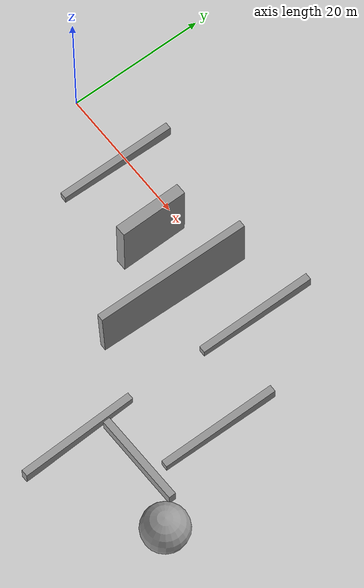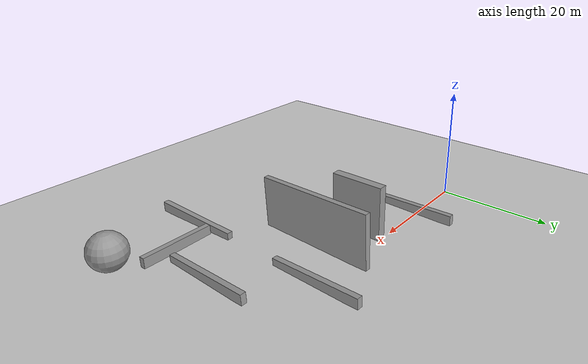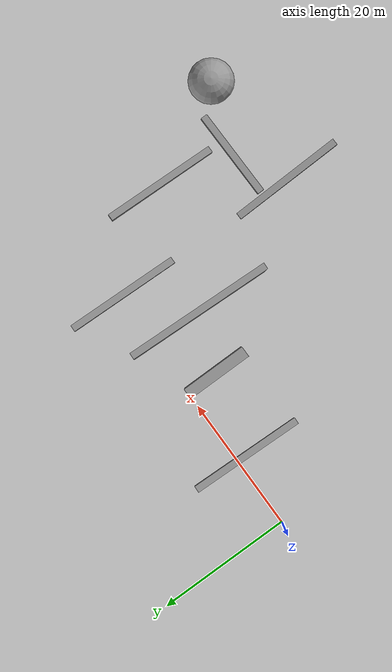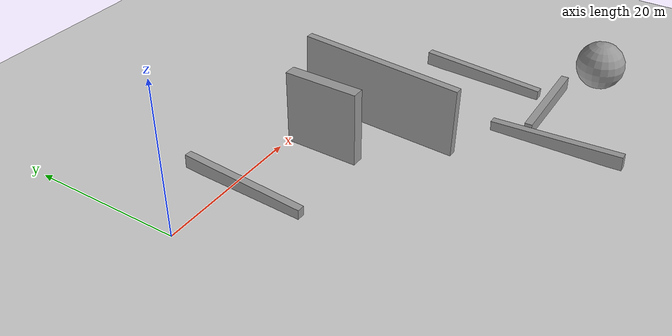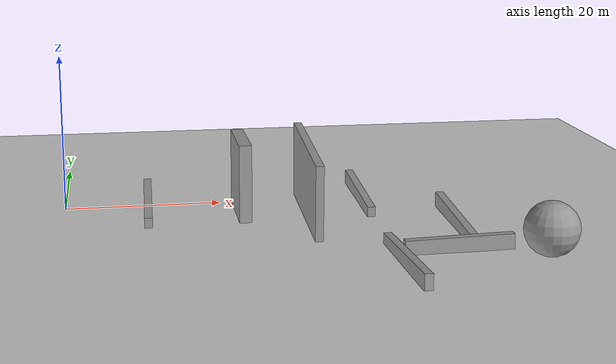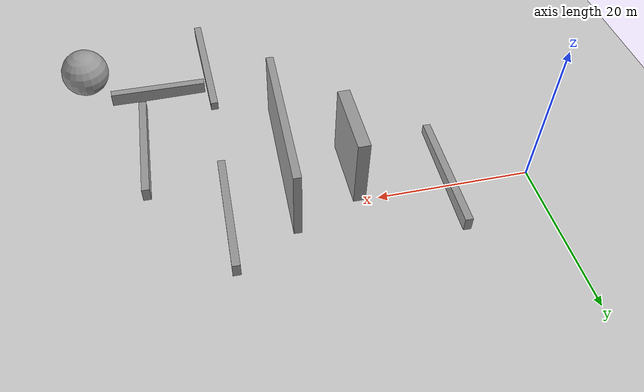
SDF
<sdf version="1.7">
 <world name="default">
  <physics type="ode">
   <ode>
    <solver>
     <type>quick</type>
     <iters>100</iters>
     <sor>1</sor>
     <use_dynamic_moi_rescaling>0</use_dynamic_moi_rescaling>
    </solver>
    <constraints>
     <cfm>0</cfm>
     <erp>0.9</erp>
     <contact_max_correcting_vel>0.1</contact_max_correcting_vel>
     <contact_surface_layer>0</contact_surface_layer>
    </constraints>
   </ode>
   <real_time_update_rate>1000</real_time_update_rate>
   <max_step_size>0.001</max_step_size>
   <real_time_factor>1</real_time_factor>
  </physics>
  <scene>
   <sky><clouds><speed>12</speed></clouds></sky>
   <ambient>0.4 0.4 0.4 1</ambient>
   <background>0.25 0.25 0.25 1</background>
   <shadows>1</shadows>
  </scene>
  <model name="ground_plane">
   <static>1</static>
   <link name="link">
    <collision name="collision">
     <geometry><plane><normal>0 0 1</normal><size>5000 5000</size></plane></geometry>
     <surface><friction><ode><mu>1</mu><mu2>1</mu2></ode></friction></surface>
    </collision>
    <visual name="runway">
     <pose>0 0 0.005 0 -0 0</pose>
     <cast_shadows>0</cast_shadows>
     <geometry><plane><normal>0 0 1</normal><size>1829 45</size></plane></geometry>
     <material>
      <script><uri>file://media/materials/scripts/gazebo.material</uri><name>Gazebo/Runway</name></script>
     </material>
    </visual>
    <visual name="grass">
     <pose>0 0 -0.1 0 -0 0</pose>
     <cast_shadows>0</cast_shadows>
     <geometry><plane><normal>0 0 1</normal><size>5000 5000</size></plane></geometry>
     <material>
      <script><uri>file://media/materials/scripts/gazebo.material</uri><name>Gazebo/Grass</name></script>
     </material>
    </visual>
   </link>
  </model>
  <light name="sun" type="directional">
   <pose>0 0 10 0 -0 0</pose>
   <diffuse>0.8 0.8 0.8 1</diffuse>
   <specular>0.2 0.2 0.2 1</specular>
   <attenuation>
    <range>1000</range>
    <constant>0.9</constant>
    <linear>0.01</linear>
    <quadratic>0.001</quadratic>
   </attenuation>
   <direction>-0.5 0.1 -0.9</direction>
   <spot><inner_angle>0</inner_angle><outer_angle>0</outer_angle><falloff>0</falloff></spot>
  </light>
  <gravity>0 0 -9.8</gravity>
  <magnetic_field>6e-06 2.3e-05 -4.2e-05</magnetic_field>
  <atmosphere type="adiabatic"/>
  <spherical_coordinates>
   <surface_model>EARTH_WGS84</surface_model>
   <latitude_deg>0</latitude_deg>
   <longitude_deg>0</longitude_deg>
   <elevation>0</elevation>
   <heading_deg>0</heading_deg>
  </spherical_coordinates>
  <model name="unit_box">
   <pose>22.4371 -4.92512 4.95395 -1e-06 -0 0.003212</pose>
   <link name="link">
    <inertial>
     <mass>1</mass>
     <inertia>
      <ixx>0.166667</ixx>
      <ixy>0</ixy>
      <ixz>0</ixz>
      <iyy>0.166667</iyy>
      <iyz>0</iyz>
      <izz>0.166667</izz>
     </inertia>
    </inertial>
    <collision name="collision"><geometry><box><size>1.58295 9.73512 9.90789</size></box></geometry></collision>
    <visual name="visual">
     <geometry><box><size>1.58295 9.73512 9.90789</size></box></geometry>
     <material>
      <script><name>Gazebo/Grey</name><uri>file://media/materials/scripts/gazebo.material</uri></script>
     </material>
    </visual>
   </link>
  </model>
  <model name="unit_sphere">
   <pose>55.3885 -28.1148 3.26019 0 -0 0</pose>
   <link name="link">
    <inertial>
     <mass>1</mass>
     <inertia><ixx>0.1</ixx><ixy>0</ixy><ixz>0</ixz><iyy>0.1</iyy><iyz>0</iyz><izz>0.1</izz></inertia>
    </inertial>
    <collision name="collision"><geometry><sphere><radius>3.26019</radius></sphere></geometry></collision>
    <visual name="visual">
     <geometry><sphere><radius>3.26019</radius></sphere></geometry>
     <material>
      <script><name>Gazebo/Grey</name><uri>file://media/materials/scripts/gazebo.material</uri></script>
     </material>
    </visual>
   </link>
  </model>
  <model name="unit_box_0">
   <pose>30.6063 -7.79343 4.61937 0.029386 0.001065 -0.036208</pose>
   <link name="link">
    <inertial>
     <mass>1</mass>
     <inertia>
      <ixx>0.166667</ixx>
      <ixy>0</ixy>
      <ixz>0</ixz>
      <iyy>0.166667</iyy>
      <iyz>0</iyz>
      <izz>0.166667</izz>
     </inertia>
    </inertial>
    <collision name="collision"><geometry><box><size>1 21.9303 9.86926</size></box></geometry></collision>
    <visual name="visual">
     <geometry><box><size>1 21.9303 9.86926</size></box></geometry>
     <material>
      <script><name>Gazebo/Grey</name><uri>file://media/materials/scripts/gazebo.material</uri></script>
     </material>
    </visual>
   </link>
  </model>
  <model name="unit_box_1">
   <pose>38.3286 -28.7499 0.614217 -0.001057 -0.037952 -1.54293</pose>
   <link name="link">
    <inertial>
     <mass>1</mass>
     <inertia>
      <ixx>0.166667</ixx>
      <ixy>0</ixy>
      <ixz>0</ixz>
      <iyy>0.166667</iyy>
      <iyz>0</iyz>
      <izz>0.166667</izz>
     </inertia>
    </inertial>
    <collision name="collision"><geometry><box><size>16.9222 1 1.86542</size></box></geometry></collision>
    <visual name="visual">
     <geometry><box><size>16.9222 1 1.86542</size></box></geometry>
     <material>
      <script><name>Gazebo/Grey</name><uri>file://media/materials/scripts/gazebo.material</uri></script>
     </material>
    </visual>
   </link>
  </model>
  <model name="unit_box_1_clone">
   <pose>38.8346 -0.775739 0.614217 -0.001057 0.037952 -1.59867</pose>
   <link name="link">
    <inertial>
     <mass>1</mass>
     <inertia>
      <ixx>0.166667</ixx>
      <ixy>0</ixy>
      <ixz>0</ixz>
      <iyy>0.166667</iyy>
      <iyz>0</iyz>
      <izz>0.166667</izz>
     </inertia>
    </inertial>
    <collision name="collision"><geometry><box><size>16.9222 1 1.86542</size></box></geometry></collision>
    <visual name="visual">
     <geometry><box><size>16.9222 1 1.86542</size></box></geometry>
     <material>
      <script><name>Gazebo/Grey</name><uri>file://media/materials/scripts/gazebo.material</uri></script>
     </material>
    </visual>
   </link>
  </model>
  <model name="unit_box_1_clone_clone">
   <pose>48.2262 -14.1001 0.614217 -0.001057 0.037952 -1.59867</pose>
   <link name="link">
    <inertial>
     <mass>1</mass>
     <inertia>
      <ixx>0.166667</ixx>
      <ixy>0</ixy>
      <ixz>0</ixz>
      <iyy>0.166667</iyy>
      <iyz>0</iyz>
      <izz>0.166667</izz>
     </inertia>
    </inertial>
    <collision name="collision"><geometry><box><size>16.9222 1 1.86542</size></box></geometry></collision>
    <visual name="visual">
     <geometry><box><size>16.9222 1 1.86542</size></box></geometry>
     <material>
      <script><name>Gazebo/Grey</name><uri>file://media/materials/scripts/gazebo.material</uri></script>
     </material>
    </visual>
   </link>
  </model>
  <model name="unit_box_1_clone_clone_0">
   <pose>45.6046 -24.6255 0.819183 -0.000343 -0.01738 0.01977</pose>
   <link name="link">
    <inertial>
     <mass>1</mass>
     <inertia>
      <ixx>0.166667</ixx>
      <ixy>0</ixy>
      <ixz>0</ixz>
      <iyy>0.166667</iyy>
      <iyz>0</iyz>
      <izz>0.166667</izz>
     </inertia>
    </inertial>
    <collision name="collision"><geometry><box><size>13.1331 1 1.86542</size></box></geometry></collision>
    <visual name="visual">
     <geometry><box><size>13.1331 1 1.86542</size></box></geometry>
     <material>
      <script><name>Gazebo/Grey</name><uri>file://media/materials/scripts/gazebo.material</uri></script>
     </material>
    </visual>
   </link>
  </model>
  <model name="unit_box_1_clone_clone_1">
   <pose>10.5805 -1.5046 0.614217 -0.001057 0.037952 -1.59867</pose>
   <link name="link">
    <inertial>
     <mass>1</mass>
     <inertia>
      <ixx>0.166667</ixx>
      <ixy>0</ixy>
      <ixz>0</ixz>
      <iyy>0.166667</iyy>
      <iyz>0</iyz>
      <izz>0.166667</izz>
     </inertia>
    </inertial>
    <collision name="collision"><geometry><box><size>16.9222 1 1.86542</size></box></geometry></collision>
    <visual name="visual">
     <geometry><box><size>16.9222 1 1.86542</size></box></geometry>
     <material>
      <script><name>Gazebo/Grey</name><uri>file://media/materials/scripts/gazebo.material</uri></script>
     </material>
    </visual>
   </link>
  </model>
 </world>
</sdf>
